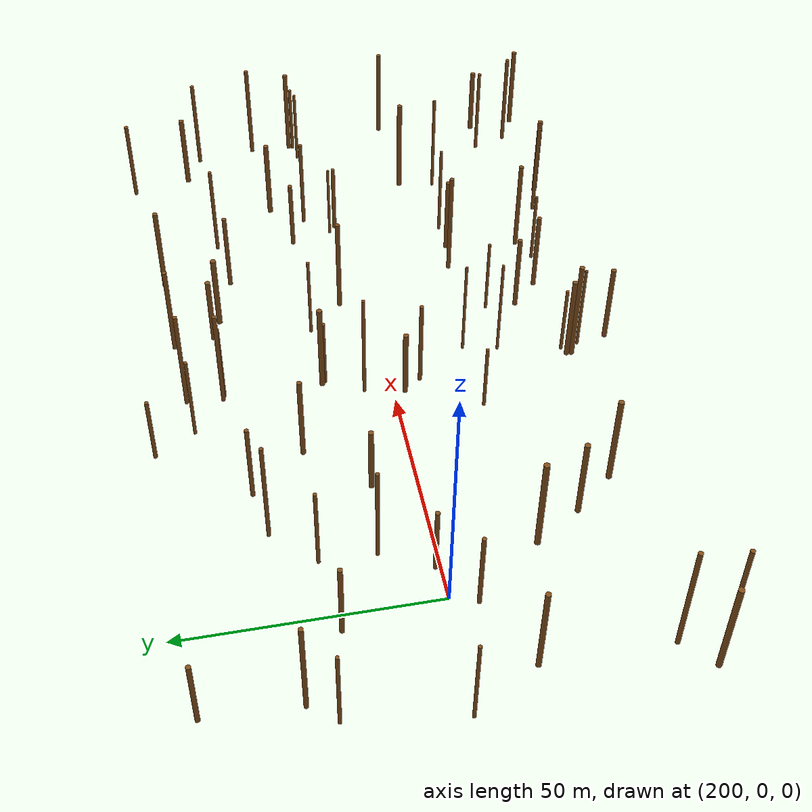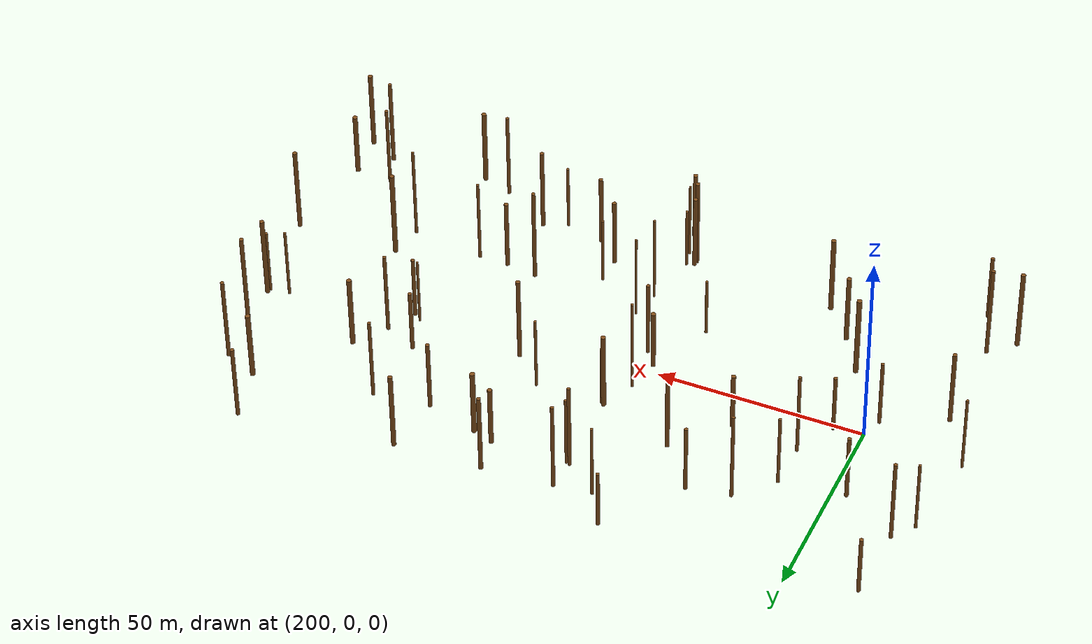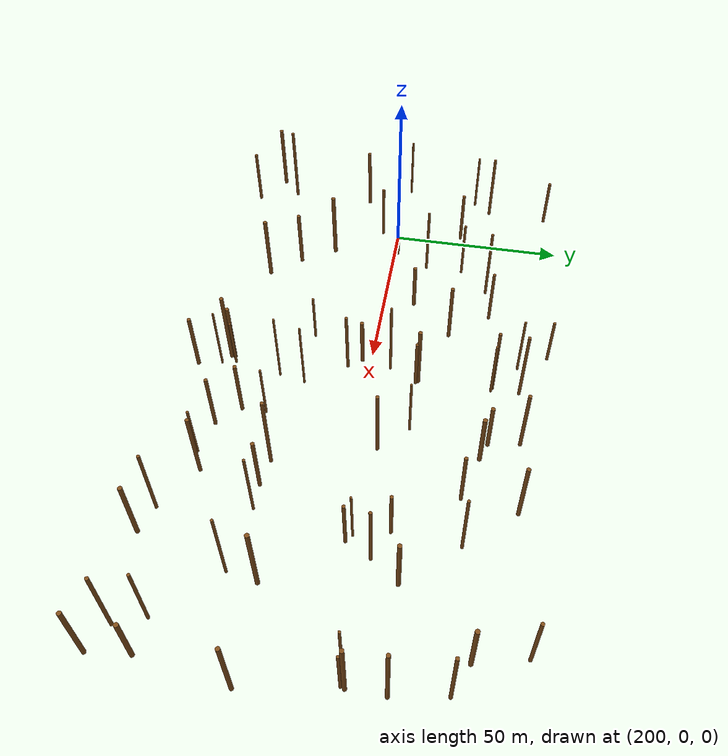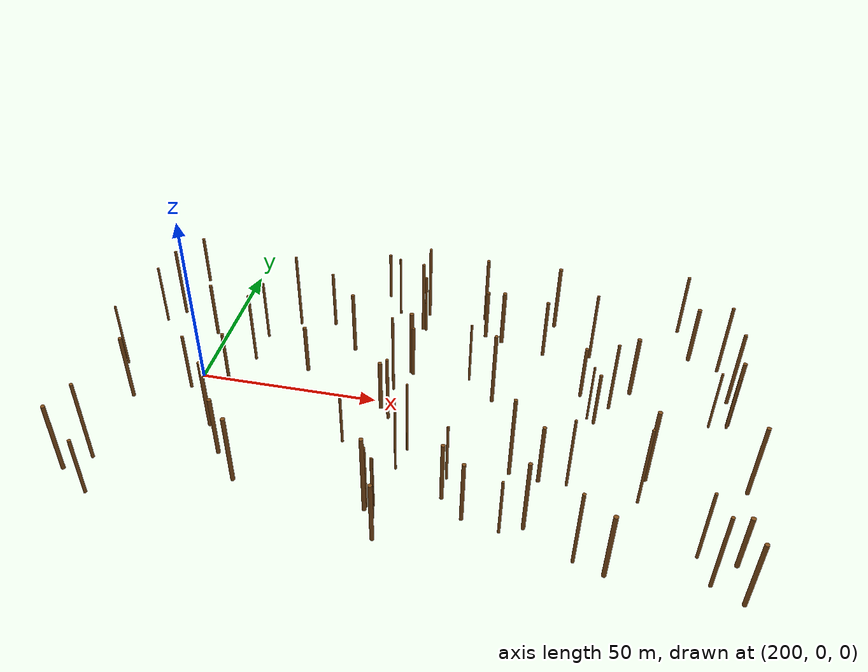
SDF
<sdf version="1.6">
 <world name="simple_forest">
  <include><uri>model://sun</uri></include>
  <model name="tree_4">
   <pose>228.23621582028974 8.92656838759087 7.5324937983903055 0 0 0</pose>
   <static>true</static>
   <link name="trunk">
    <collision name="collision">
     <geometry>
      <cylinder><radius>0.542829137003348</radius><length>15.064987596780611</length></cylinder>
     </geometry>
    </collision>
    <visual name="visual">
     <geometry>
      <cylinder><radius>0.542829137003348</radius><length>15.064987596780611</length></cylinder>
     </geometry>
     <material><ambient>0.5 0.3 0.1 1</ambient><diffuse>0.5 0.3 0.1 1</diffuse></material>
    </visual>
   </link>
  </model>
  <model name="tree_13">
   <pose>274.3080438286222 43.665458771249405 10.545655028334942 0 0 0</pose>
   <static>true</static>
   <link name="trunk">
    <collision name="collision">
     <geometry>
      <cylinder><radius>0.49441061557397803</radius><length>21.091310056669883</length></cylinder>
     </geometry>
    </collision>
    <visual name="visual">
     <geometry>
      <cylinder><radius>0.49441061557397803</radius><length>21.091310056669883</length></cylinder>
     </geometry>
     <material><ambient>0.5 0.3 0.1 1</ambient><diffuse>0.5 0.3 0.1 1</diffuse></material>
    </visual>
   </link>
  </model>
  <model name="tree_14">
   <pose>179.42726171611602 22.91267979503492 9.397277208788239 0 0 0</pose>
   <static>true</static>
   <link name="trunk">
    <collision name="collision">
     <geometry>
      <cylinder><radius>0.34902074812857853</radius><length>18.794554417576478</length></cylinder>
     </geometry>
    </collision>
    <visual name="visual">
     <geometry>
      <cylinder><radius>0.34902074812857853</radius><length>18.794554417576478</length></cylinder>
     </geometry>
     <material><ambient>0.5 0.3 0.1 1</ambient><diffuse>0.5 0.3 0.1 1</diffuse></material>
    </visual>
   </link>
  </model>
  <model name="tree_17">
   <pose>322.2985175784911 -23.225912402429728 12.214548571675273 0 0 0</pose>
   <static>true</static>
   <link name="trunk">
    <collision name="collision">
     <geometry>
      <cylinder><radius>0.3632948530758979</radius><length>24.429097143350546</length></cylinder>
     </geometry>
    </collision>
    <visual name="visual">
     <geometry>
      <cylinder><radius>0.3632948530758979</radius><length>24.429097143350546</length></cylinder>
     </geometry>
     <material><ambient>0.5 0.3 0.1 1</ambient><diffuse>0.5 0.3 0.1 1</diffuse></material>
    </visual>
   </link>
  </model>
  <model name="tree_26">
   <pose>274.15693805301737 14.0961798579808 9.673826253345524 0 0 0</pose>
   <static>true</static>
   <link name="trunk">
    <collision name="collision">
     <geometry>
      <cylinder><radius>0.33346565207876294</radius><length>19.34765250669105</length></cylinder>
     </geometry>
    </collision>
    <visual name="visual">
     <geometry>
      <cylinder><radius>0.33346565207876294</radius><length>19.34765250669105</length></cylinder>
     </geometry>
     <material><ambient>0.5 0.3 0.1 1</ambient><diffuse>0.5 0.3 0.1 1</diffuse></material>
    </visual>
   </link>
  </model>
  <model name="tree_29">
   <pose>305.46034353414655 13.894949486600517 8.264196342748175 0 0 0</pose>
   <static>true</static>
   <link name="trunk">
    <collision name="collision">
     <geometry>
      <cylinder><radius>0.4826910634314517</radius><length>16.52839268549635</length></cylinder>
     </geometry>
    </collision>
    <visual name="visual">
     <geometry>
      <cylinder><radius>0.4826910634314517</radius><length>16.52839268549635</length></cylinder>
     </geometry>
     <material><ambient>0.5 0.3 0.1 1</ambient><diffuse>0.5 0.3 0.1 1</diffuse></material>
    </visual>
   </link>
  </model>
  <model name="tree_37">
   <pose>209.13955275579895 -18.828370869910504 10.749390288197267 0 0 0</pose>
   <static>true</static>
   <link name="trunk">
    <collision name="collision">
     <geometry>
      <cylinder><radius>0.5985448069982684</radius><length>21.498780576394534</length></cylinder>
     </geometry>
    </collision>
    <visual name="visual">
     <geometry>
      <cylinder><radius>0.5985448069982684</radius><length>21.498780576394534</length></cylinder>
     </geometry>
     <material><ambient>0.5 0.3 0.1 1</ambient><diffuse>0.5 0.3 0.1 1</diffuse></material>
    </visual>
   </link>
  </model>
  <model name="tree_39">
   <pose>344.7047065259808 8.83087184572333 8.601086922257798 0 0 0</pose>
   <static>true</static>
   <link name="trunk">
    <collision name="collision">
     <geometry>
      <cylinder><radius>0.3690344197789731</radius><length>17.202173844515595</length></cylinder>
     </geometry>
    </collision>
    <visual name="visual">
     <geometry>
      <cylinder><radius>0.3690344197789731</radius><length>17.202173844515595</length></cylinder>
     </geometry>
     <material><ambient>0.5 0.3 0.1 1</ambient><diffuse>0.5 0.3 0.1 1</diffuse></material>
    </visual>
   </link>
  </model>
  <model name="tree_42">
   <pose>222.0944392967342 -36.768815127497504 10.355215466626422 0 0 0</pose>
   <static>true</static>
   <link name="trunk">
    <collision name="collision">
     <geometry>
      <cylinder><radius>0.5806542721742013</radius><length>20.710430933252844</length></cylinder>
     </geometry>
    </collision>
    <visual name="visual">
     <geometry>
      <cylinder><radius>0.5806542721742013</radius><length>20.710430933252844</length></cylinder>
     </geometry>
     <material><ambient>0.5 0.3 0.1 1</ambient><diffuse>0.5 0.3 0.1 1</diffuse></material>
    </visual>
   </link>
  </model>
  <model name="tree_47">
   <pose>198.3068193564034 -5.138645216686811 8.892725723334703 0 0 0</pose>
   <static>true</static>
   <link name="trunk">
    <collision name="collision">
     <geometry>
      <cylinder><radius>0.4265644919503212</radius><length>17.785451446669406</length></cylinder>
     </geometry>
    </collision>
    <visual name="visual">
     <geometry>
      <cylinder><radius>0.4265644919503212</radius><length>17.785451446669406</length></cylinder>
     </geometry>
     <material><ambient>0.5 0.3 0.1 1</ambient><diffuse>0.5 0.3 0.1 1</diffuse></material>
    </visual>
   </link>
  </model>
  <model name="tree_48">
   <pose>257.3083834032795 42.32655992760128 11.806745523809152 0 0 0</pose>
   <static>true</static>
   <link name="trunk">
    <collision name="collision">
     <geometry>
      <cylinder><radius>0.4329392235160371</radius><length>23.613491047618304</length></cylinder>
     </geometry>
    </collision>
    <visual name="visual">
     <geometry>
      <cylinder><radius>0.4329392235160371</radius><length>23.613491047618304</length></cylinder>
     </geometry>
     <material><ambient>0.5 0.3 0.1 1</ambient><diffuse>0.5 0.3 0.1 1</diffuse></material>
    </visual>
   </link>
  </model>
  <model name="tree_61">
   <pose>212.21660742930106 21.619180078941483 9.478929233956272 0 0 0</pose>
   <static>true</static>
   <link name="trunk">
    <collision name="collision">
     <geometry>
      <cylinder><radius>0.3716057857847538</radius><length>18.957858467912544</length></cylinder>
     </geometry>
    </collision>
    <visual name="visual">
     <geometry>
      <cylinder><radius>0.3716057857847538</radius><length>18.957858467912544</length></cylinder>
     </geometry>
     <material><ambient>0.5 0.3 0.1 1</ambient><diffuse>0.5 0.3 0.1 1</diffuse></material>
    </visual>
   </link>
  </model>
  <model name="tree_78">
   <pose>257.0344418306952 -39.72063783282144 11.920673507255046 0 0 0</pose>
   <static>true</static>
   <link name="trunk">
    <collision name="collision">
     <geometry>
      <cylinder><radius>0.5340348725614328</radius><length>23.84134701451009</length></cylinder>
     </geometry>
    </collision>
    <visual name="visual">
     <geometry>
      <cylinder><radius>0.5340348725614328</radius><length>23.84134701451009</length></cylinder>
     </geometry>
     <material><ambient>0.5 0.3 0.1 1</ambient><diffuse>0.5 0.3 0.1 1</diffuse></material>
    </visual>
   </link>
  </model>
  <model name="tree_84">
   <pose>230.20938037020778 31.65866055969289 9.025954336693003 0 0 0</pose>
   <static>true</static>
   <link name="trunk">
    <collision name="collision">
     <geometry>
      <cylinder><radius>0.4380909704036826</radius><length>18.051908673386006</length></cylinder>
     </geometry>
    </collision>
    <visual name="visual">
     <geometry>
      <cylinder><radius>0.4380909704036826</radius><length>18.051908673386006</length></cylinder>
     </geometry>
     <material><ambient>0.5 0.3 0.1 1</ambient><diffuse>0.5 0.3 0.1 1</diffuse></material>
    </visual>
   </link>
  </model>
  <model name="tree_86">
   <pose>334.97933168572945 36.43529420302863 8.895624963609357 0 0 0</pose>
   <static>true</static>
   <link name="trunk">
    <collision name="collision">
     <geometry>
      <cylinder><radius>0.5900667312145083</radius><length>17.791249927218715</length></cylinder>
     </geometry>
    </collision>
    <visual name="visual">
     <geometry>
      <cylinder><radius>0.5900667312145083</radius><length>17.791249927218715</length></cylinder>
     </geometry>
     <material><ambient>0.5 0.3 0.1 1</ambient><diffuse>0.5 0.3 0.1 1</diffuse></material>
    </visual>
   </link>
  </model>
  <model name="tree_98">
   <pose>307.94037581990966 4.793721313569819 8.934568584344635 0 0 0</pose>
   <static>true</static>
   <link name="trunk">
    <collision name="collision">
     <geometry>
      <cylinder><radius>0.30012178190918626</radius><length>17.86913716868927</length></cylinder>
     </geometry>
    </collision>
    <visual name="visual">
     <geometry>
      <cylinder><radius>0.30012178190918626</radius><length>17.86913716868927</length></cylinder>
     </geometry>
     <material><ambient>0.5 0.3 0.1 1</ambient><diffuse>0.5 0.3 0.1 1</diffuse></material>
    </visual>
   </link>
  </model>
  <model name="tree_104">
   <pose>252.39411863756666 -2.4863655781194893 7.864141145922845 0 0 0</pose>
   <static>true</static>
   <link name="trunk">
    <collision name="collision">
     <geometry>
      <cylinder><radius>0.5549213083874196</radius><length>15.72828229184569</length></cylinder>
     </geometry>
    </collision>
    <visual name="visual">
     <geometry>
      <cylinder><radius>0.5549213083874196</radius><length>15.72828229184569</length></cylinder>
     </geometry>
     <material><ambient>0.5 0.3 0.1 1</ambient><diffuse>0.5 0.3 0.1 1</diffuse></material>
    </visual>
   </link>
  </model>
  <model name="tree_108">
   <pose>184.12781488946635 45.79660422795398 7.7510919257032045 0 0 0</pose>
   <static>true</static>
   <link name="trunk">
    <collision name="collision">
     <geometry>
      <cylinder><radius>0.4553873251331222</radius><length>15.502183851406409</length></cylinder>
     </geometry>
    </collision>
    <visual name="visual">
     <geometry>
      <cylinder><radius>0.4553873251331222</radius><length>15.502183851406409</length></cylinder>
     </geometry>
     <material><ambient>0.5 0.3 0.1 1</ambient><diffuse>0.5 0.3 0.1 1</diffuse></material>
    </visual>
   </link>
  </model>
  <model name="tree_109">
   <pose>256.7062968633719 34.83363473516597 11.507083008611321 0 0 0</pose>
   <static>true</static>
   <link name="trunk">
    <collision name="collision">
     <geometry>
      <cylinder><radius>0.4369385476410518</radius><length>23.014166017222642</length></cylinder>
     </geometry>
    </collision>
    <visual name="visual">
     <geometry>
      <cylinder><radius>0.4369385476410518</radius><length>23.014166017222642</length></cylinder>
     </geometry>
     <material><ambient>0.5 0.3 0.1 1</ambient><diffuse>0.5 0.3 0.1 1</diffuse></material>
    </visual>
   </link>
  </model>
  <model name="tree_129">
   <pose>259.7488164645568 -41.80937672383575 10.197095239612668 0 0 0</pose>
   <static>true</static>
   <link name="trunk">
    <collision name="collision">
     <geometry>
      <cylinder><radius>0.3058149861150032</radius><length>20.394190479225337</length></cylinder>
     </geometry>
    </collision>
    <visual name="visual">
     <geometry>
      <cylinder><radius>0.3058149861150032</radius><length>20.394190479225337</length></cylinder>
     </geometry>
     <material><ambient>0.5 0.3 0.1 1</ambient><diffuse>0.5 0.3 0.1 1</diffuse></material>
    </visual>
   </link>
  </model>
  <model name="tree_136">
   <pose>318.83767195074824 17.734728685040878 9.483272207583136 0 0 0</pose>
   <static>true</static>
   <link name="trunk">
    <collision name="collision">
     <geometry>
      <cylinder><radius>0.5874518514617688</radius><length>18.966544415166272</length></cylinder>
     </geometry>
    </collision>
    <visual name="visual">
     <geometry>
      <cylinder><radius>0.5874518514617688</radius><length>18.966544415166272</length></cylinder>
     </geometry>
     <material><ambient>0.5 0.3 0.1 1</ambient><diffuse>0.5 0.3 0.1 1</diffuse></material>
    </visual>
   </link>
  </model>
  <model name="tree_145">
   <pose>275.71158266873306 35.17131600193318 7.933314490278372 0 0 0</pose>
   <static>true</static>
   <link name="trunk">
    <collision name="collision">
     <geometry>
      <cylinder><radius>0.549219305667181</radius><length>15.866628980556744</length></cylinder>
     </geometry>
    </collision>
    <visual name="visual">
     <geometry>
      <cylinder><radius>0.549219305667181</radius><length>15.866628980556744</length></cylinder>
     </geometry>
     <material><ambient>0.5 0.3 0.1 1</ambient><diffuse>0.5 0.3 0.1 1</diffuse></material>
    </visual>
   </link>
  </model>
  <model name="tree_148">
   <pose>219.9986516779416 29.783235682809647 11.901599898791126 0 0 0</pose>
   <static>true</static>
   <link name="trunk">
    <collision name="collision">
     <geometry>
      <cylinder><radius>0.40210165294928507</radius><length>23.803199797582252</length></cylinder>
     </geometry>
    </collision>
    <visual name="visual">
     <geometry>
      <cylinder><radius>0.40210165294928507</radius><length>23.803199797582252</length></cylinder>
     </geometry>
     <material><ambient>0.5 0.3 0.1 1</ambient><diffuse>0.5 0.3 0.1 1</diffuse></material>
    </visual>
   </link>
  </model>
  <model name="tree_155">
   <pose>258.8896394389321 -37.934411524769416 8.097773706275264 0 0 0</pose>
   <static>true</static>
   <link name="trunk">
    <collision name="collision">
     <geometry>
      <cylinder><radius>0.3577752880354552</radius><length>16.19554741255053</length></cylinder>
     </geometry>
    </collision>
    <visual name="visual">
     <geometry>
      <cylinder><radius>0.3577752880354552</radius><length>16.19554741255053</length></cylinder>
     </geometry>
     <material><ambient>0.5 0.3 0.1 1</ambient><diffuse>0.5 0.3 0.1 1</diffuse></material>
    </visual>
   </link>
  </model>
  <model name="tree_158">
   <pose>290.16871624220545 -39.94738919092092 8.637415817412773 0 0 0</pose>
   <static>true</static>
   <link name="trunk">
    <collision name="collision">
     <geometry>
      <cylinder><radius>0.35823527342732203</radius><length>17.274831634825546</length></cylinder>
     </geometry>
    </collision>
    <visual name="visual">
     <geometry>
      <cylinder><radius>0.35823527342732203</radius><length>17.274831634825546</length></cylinder>
     </geometry>
     <material><ambient>0.5 0.3 0.1 1</ambient><diffuse>0.5 0.3 0.1 1</diffuse></material>
    </visual>
   </link>
  </model>
  <model name="tree_159">
   <pose>187.64712824854928 -48.585163274393615 8.871556633916336 0 0 0</pose>
   <static>true</static>
   <link name="trunk">
    <collision name="collision">
     <geometry>
      <cylinder><radius>0.460240526780299</radius><length>17.743113267832673</length></cylinder>
     </geometry>
    </collision>
    <visual name="visual">
     <geometry>
      <cylinder><radius>0.460240526780299</radius><length>17.743113267832673</length></cylinder>
     </geometry>
     <material><ambient>0.5 0.3 0.1 1</ambient><diffuse>0.5 0.3 0.1 1</diffuse></material>
    </visual>
   </link>
  </model>
  <model name="tree_172">
   <pose>239.16147221046558 20.69558298790332 9.770156632035217 0 0 0</pose>
   <static>true</static>
   <link name="trunk">
    <collision name="collision">
     <geometry>
      <cylinder><radius>0.5108962674281151</radius><length>19.540313264070434</length></cylinder>
     </geometry>
    </collision>
    <visual name="visual">
     <geometry>
      <cylinder><radius>0.5108962674281151</radius><length>19.540313264070434</length></cylinder>
     </geometry>
     <material><ambient>0.5 0.3 0.1 1</ambient><diffuse>0.5 0.3 0.1 1</diffuse></material>
    </visual>
   </link>
  </model>
  <model name="tree_177">
   <pose>295.7244824227833 -37.564634182529176 10.998668424878586 0 0 0</pose>
   <static>true</static>
   <link name="trunk">
    <collision name="collision">
     <geometry>
      <cylinder><radius>0.5066033973636281</radius><length>21.997336849757172</length></cylinder>
     </geometry>
    </collision>
    <visual name="visual">
     <geometry>
      <cylinder><radius>0.5066033973636281</radius><length>21.997336849757172</length></cylinder>
     </geometry>
     <material><ambient>0.5 0.3 0.1 1</ambient><diffuse>0.5 0.3 0.1 1</diffuse></material>
    </visual>
   </link>
  </model>
  <model name="tree_186">
   <pose>295.3356174078412 44.519353956321055 10.250483044858914 0 0 0</pose>
   <static>true</static>
   <link name="trunk">
    <collision name="collision">
     <geometry>
      <cylinder><radius>0.5440698104213918</radius><length>20.500966089717828</length></cylinder>
     </geometry>
    </collision>
    <visual name="visual">
     <geometry>
      <cylinder><radius>0.5440698104213918</radius><length>20.500966089717828</length></cylinder>
     </geometry>
     <material><ambient>0.5 0.3 0.1 1</ambient><diffuse>0.5 0.3 0.1 1</diffuse></material>
    </visual>
   </link>
  </model>
  <model name="tree_196">
   <pose>280.69064774614145 33.47239455766943 8.71865453037569 0 0 0</pose>
   <static>true</static>
   <link name="trunk">
    <collision name="collision">
     <geometry>
      <cylinder><radius>0.5940733897810127</radius><length>17.43730906075138</length></cylinder>
     </geometry>
    </collision>
    <visual name="visual">
     <geometry>
      <cylinder><radius>0.5940733897810127</radius><length>17.43730906075138</length></cylinder>
     </geometry>
     <material><ambient>0.5 0.3 0.1 1</ambient><diffuse>0.5 0.3 0.1 1</diffuse></material>
    </visual>
   </link>
  </model>
  <model name="tree_200">
   <pose>290.0105934499984 -20.14441502282328 12.494511666146693 0 0 0</pose>
   <static>true</static>
   <link name="trunk">
    <collision name="collision">
     <geometry>
      <cylinder><radius>0.4760813167242483</radius><length>24.989023332293385</length></cylinder>
     </geometry>
    </collision>
    <visual name="visual">
     <geometry>
      <cylinder><radius>0.4760813167242483</radius><length>24.989023332293385</length></cylinder>
     </geometry>
     <material><ambient>0.5 0.3 0.1 1</ambient><diffuse>0.5 0.3 0.1 1</diffuse></material>
    </visual>
   </link>
  </model>
  <model name="tree_203">
   <pose>196.76584997003437 19.749842762057142 8.667812230289465 0 0 0</pose>
   <static>true</static>
   <link name="trunk">
    <collision name="collision">
     <geometry>
      <cylinder><radius>0.47153929259547034</radius><length>17.33562446057893</length></cylinder>
     </geometry>
    </collision>
    <visual name="visual">
     <geometry>
      <cylinder><radius>0.47153929259547034</radius><length>17.33562446057893</length></cylinder>
     </geometry>
     <material><ambient>0.5 0.3 0.1 1</ambient><diffuse>0.5 0.3 0.1 1</diffuse></material>
    </visual>
   </link>
  </model>
  <model name="tree_210">
   <pose>345.17562171091737 19.2704598586882 11.758826461753458 0 0 0</pose>
   <static>true</static>
   <link name="trunk">
    <collision name="collision">
     <geometry>
      <cylinder><radius>0.49495099577378177</radius><length>23.517652923506915</length></cylinder>
     </geometry>
    </collision>
    <visual name="visual">
     <geometry>
      <cylinder><radius>0.49495099577378177</radius><length>23.517652923506915</length></cylinder>
     </geometry>
     <material><ambient>0.5 0.3 0.1 1</ambient><diffuse>0.5 0.3 0.1 1</diffuse></material>
    </visual>
   </link>
  </model>
  <model name="tree_218">
   <pose>178.2838125774164 -42.10316493400054 10.598551842687076 0 0 0</pose>
   <static>true</static>
   <link name="trunk">
    <collision name="collision">
     <geometry>
      <cylinder><radius>0.5612518795934565</radius><length>21.197103685374152</length></cylinder>
     </geometry>
    </collision>
    <visual name="visual">
     <geometry>
      <cylinder><radius>0.5612518795934565</radius><length>21.197103685374152</length></cylinder>
     </geometry>
     <material><ambient>0.5 0.3 0.1 1</ambient><diffuse>0.5 0.3 0.1 1</diffuse></material>
    </visual>
   </link>
  </model>
  <model name="tree_219">
   <pose>248.42149393774991 41.28290160235548 9.805749566774988 0 0 0</pose>
   <static>true</static>
   <link name="trunk">
    <collision name="collision">
     <geometry>
      <cylinder><radius>0.3429353160385529</radius><length>19.611499133549977</length></cylinder>
     </geometry>
    </collision>
    <visual name="visual">
     <geometry>
      <cylinder><radius>0.3429353160385529</radius><length>19.611499133549977</length></cylinder>
     </geometry>
     <material><ambient>0.5 0.3 0.1 1</ambient><diffuse>0.5 0.3 0.1 1</diffuse></material>
    </visual>
   </link>
  </model>
  <model name="tree_220">
   <pose>261.43756601940686 -24.467329184084598 11.523165384875732 0 0 0</pose>
   <static>true</static>
   <link name="trunk">
    <collision name="collision">
     <geometry>
      <cylinder><radius>0.3028192294364613</radius><length>23.046330769751464</length></cylinder>
     </geometry>
    </collision>
    <visual name="visual">
     <geometry>
      <cylinder><radius>0.3028192294364613</radius><length>23.046330769751464</length></cylinder>
     </geometry>
     <material><ambient>0.5 0.3 0.1 1</ambient><diffuse>0.5 0.3 0.1 1</diffuse></material>
    </visual>
   </link>
  </model>
  <model name="tree_223">
   <pose>257.59724216362423 34.53039251425987 9.423466244836728 0 0 0</pose>
   <static>true</static>
   <link name="trunk">
    <collision name="collision">
     <geometry>
      <cylinder><radius>0.3597650997326677</radius><length>18.846932489673456</length></cylinder>
     </geometry>
    </collision>
    <visual name="visual">
     <geometry>
      <cylinder><radius>0.3597650997326677</radius><length>18.846932489673456</length></cylinder>
     </geometry>
     <material><ambient>0.5 0.3 0.1 1</ambient><diffuse>0.5 0.3 0.1 1</diffuse></material>
    </visual>
   </link>
  </model>
  <model name="tree_226">
   <pose>281.73557637644547 6.5929016955699 11.223344205826626 0 0 0</pose>
   <static>true</static>
   <link name="trunk">
    <collision name="collision">
     <geometry>
      <cylinder><radius>0.5057398478202036</radius><length>22.446688411653252</length></cylinder>
     </geometry>
    </collision>
    <visual name="visual">
     <geometry>
      <cylinder><radius>0.5057398478202036</radius><length>22.446688411653252</length></cylinder>
     </geometry>
     <material><ambient>0.5 0.3 0.1 1</ambient><diffuse>0.5 0.3 0.1 1</diffuse></material>
    </visual>
   </link>
  </model>
  <model name="tree_228">
   <pose>293.33220994460254 29.886011950759865 9.261604779176583 0 0 0</pose>
   <static>true</static>
   <link name="trunk">
    <collision name="collision">
     <geometry>
      <cylinder><radius>0.4821194994492798</radius><length>18.523209558353166</length></cylinder>
     </geometry>
    </collision>
    <visual name="visual">
     <geometry>
      <cylinder><radius>0.4821194994492798</radius><length>18.523209558353166</length></cylinder>
     </geometry>
     <material><ambient>0.5 0.3 0.1 1</ambient><diffuse>0.5 0.3 0.1 1</diffuse></material>
    </visual>
   </link>
  </model>
  <model name="tree_233">
   <pose>183.88366973986356 -36.78402022532165 12.357447906056699 0 0 0</pose>
   <static>true</static>
   <link name="trunk">
    <collision name="collision">
     <geometry>
      <cylinder><radius>0.4618223276953263</radius><length>24.714895812113397</length></cylinder>
     </geometry>
    </collision>
    <visual name="visual">
     <geometry>
      <cylinder><radius>0.4618223276953263</radius><length>24.714895812113397</length></cylinder>
     </geometry>
     <material><ambient>0.5 0.3 0.1 1</ambient><diffuse>0.5 0.3 0.1 1</diffuse></material>
    </visual>
   </link>
  </model>
  <model name="tree_236">
   <pose>345.32810126386744 -38.48302925502406 8.203785075029414 0 0 0</pose>
   <static>true</static>
   <link name="trunk">
    <collision name="collision">
     <geometry>
      <cylinder><radius>0.5888679878606633</radius><length>16.407570150058827</length></cylinder>
     </geometry>
    </collision>
    <visual name="visual">
     <geometry>
      <cylinder><radius>0.5888679878606633</radius><length>16.407570150058827</length></cylinder>
     </geometry>
     <material><ambient>0.5 0.3 0.1 1</ambient><diffuse>0.5 0.3 0.1 1</diffuse></material>
    </visual>
   </link>
  </model>
  <model name="tree_255">
   <pose>215.0857966431919 -28.404864808132523 9.142797767161152 0 0 0</pose>
   <static>true</static>
   <link name="trunk">
    <collision name="collision">
     <geometry>
      <cylinder><radius>0.5609086280308634</radius><length>18.285595534322304</length></cylinder>
     </geometry>
    </collision>
    <visual name="visual">
     <geometry>
      <cylinder><radius>0.5609086280308634</radius><length>18.285595534322304</length></cylinder>
     </geometry>
     <material><ambient>0.5 0.3 0.1 1</ambient><diffuse>0.5 0.3 0.1 1</diffuse></material>
    </visual>
   </link>
  </model>
  <model name="tree_259">
   <pose>245.5522900295584 -17.622853803797753 7.7619950893058824 0 0 0</pose>
   <static>true</static>
   <link name="trunk">
    <collision name="collision">
     <geometry>
      <cylinder><radius>0.35227386042185316</radius><length>15.523990178611765</length></cylinder>
     </geometry>
    </collision>
    <visual name="visual">
     <geometry>
      <cylinder><radius>0.35227386042185316</radius><length>15.523990178611765</length></cylinder>
     </geometry>
     <material><ambient>0.5 0.3 0.1 1</ambient><diffuse>0.5 0.3 0.1 1</diffuse></material>
    </visual>
   </link>
  </model>
  <model name="tree_267">
   <pose>331.93358888548124 49.46277558609236 9.768577087877357 0 0 0</pose>
   <static>true</static>
   <link name="trunk">
    <collision name="collision">
     <geometry>
      <cylinder><radius>0.4591670512293974</radius><length>19.537154175754715</length></cylinder>
     </geometry>
    </collision>
    <visual name="visual">
     <geometry>
      <cylinder><radius>0.4591670512293974</radius><length>19.537154175754715</length></cylinder>
     </geometry>
     <material><ambient>0.5 0.3 0.1 1</ambient><diffuse>0.5 0.3 0.1 1</diffuse></material>
    </visual>
   </link>
  </model>
  <model name="tree_275">
   <pose>336.349521602043 -37.77687146454407 10.826702600014578 0 0 0</pose>
   <static>true</static>
   <link name="trunk">
    <collision name="collision">
     <geometry>
      <cylinder><radius>0.4060794238901303</radius><length>21.653405200029155</length></cylinder>
     </geometry>
    </collision>
    <visual name="visual">
     <geometry>
      <cylinder><radius>0.4060794238901303</radius><length>21.653405200029155</length></cylinder>
     </geometry>
     <material><ambient>0.5 0.3 0.1 1</ambient><diffuse>0.5 0.3 0.1 1</diffuse></material>
    </visual>
   </link>
  </model>
  <model name="tree_282">
   <pose>274.77324790256955 -31.95839280391456 9.04492344414955 0 0 0</pose>
   <static>true</static>
   <link name="trunk">
    <collision name="collision">
     <geometry><cylinder><radius>0.5108096318596814</radius><length>18.0898468882991</length></cylinder></geometry>
    </collision>
    <visual name="visual">
     <geometry><cylinder><radius>0.5108096318596814</radius><length>18.0898468882991</length></cylinder></geometry>
     <material><ambient>0.5 0.3 0.1 1</ambient><diffuse>0.5 0.3 0.1 1</diffuse></material>
    </visual>
   </link>
  </model>
  <model name="tree_283">
   <pose>346.42641020948577 -49.38942105963413 10.331605473806881 0 0 0</pose>
   <static>true</static>
   <link name="trunk">
    <collision name="collision">
     <geometry>
      <cylinder><radius>0.5609588119609314</radius><length>20.663210947613763</length></cylinder>
     </geometry>
    </collision>
    <visual name="visual">
     <geometry>
      <cylinder><radius>0.5609588119609314</radius><length>20.663210947613763</length></cylinder>
     </geometry>
     <material><ambient>0.5 0.3 0.1 1</ambient><diffuse>0.5 0.3 0.1 1</diffuse></material>
    </visual>
   </link>
  </model>
  <model name="tree_293">
   <pose>262.9643089812447 -17.18776440621589 11.235070617148839 0 0 0</pose>
   <static>true</static>
   <link name="trunk">
    <collision name="collision">
     <geometry>
      <cylinder><radius>0.30231897197079355</radius><length>22.470141234297678</length></cylinder>
     </geometry>
    </collision>
    <visual name="visual">
     <geometry>
      <cylinder><radius>0.30231897197079355</radius><length>22.470141234297678</length></cylinder>
     </geometry>
     <material><ambient>0.5 0.3 0.1 1</ambient><diffuse>0.5 0.3 0.1 1</diffuse></material>
    </visual>
   </link>
  </model>
  <model name="tree_294">
   <pose>183.93785385708387 -11.979255428476378 10.001311732781065 0 0 0</pose>
   <static>true</static>
   <link name="trunk">
    <collision name="collision">
     <geometry>
      <cylinder><radius>0.5111013790147991</radius><length>20.00262346556213</length></cylinder>
     </geometry>
    </collision>
    <visual name="visual">
     <geometry>
      <cylinder><radius>0.5111013790147991</radius><length>20.00262346556213</length></cylinder>
     </geometry>
     <material><ambient>0.5 0.3 0.1 1</ambient><diffuse>0.5 0.3 0.1 1</diffuse></material>
    </visual>
   </link>
  </model>
  <model name="tree_302">
   <pose>176.45138096522973 1.0483284542148326 10.04976031161486 0 0 0</pose>
   <static>true</static>
   <link name="trunk">
    <collision name="collision">
     <geometry>
      <cylinder><radius>0.33420799195156575</radius><length>20.09952062322972</length></cylinder>
     </geometry>
    </collision>
    <visual name="visual">
     <geometry>
      <cylinder><radius>0.33420799195156575</radius><length>20.09952062322972</length></cylinder>
     </geometry>
     <material><ambient>0.5 0.3 0.1 1</ambient><diffuse>0.5 0.3 0.1 1</diffuse></material>
    </visual>
   </link>
  </model>
  <model name="tree_317">
   <pose>255.26628636230137 -6.2241725690767 10.113740176327727 0 0 0</pose>
   <static>true</static>
   <link name="trunk">
    <collision name="collision">
     <geometry>
      <cylinder><radius>0.4318265375287873</radius><length>20.227480352655455</length></cylinder>
     </geometry>
    </collision>
    <visual name="visual">
     <geometry>
      <cylinder><radius>0.4318265375287873</radius><length>20.227480352655455</length></cylinder>
     </geometry>
     <material><ambient>0.5 0.3 0.1 1</ambient><diffuse>0.5 0.3 0.1 1</diffuse></material>
    </visual>
   </link>
  </model>
  <model name="tree_319">
   <pose>344.9834753730054 9.788586238298947 10.736526784846534 0 0 0</pose>
   <static>true</static>
   <link name="trunk">
    <collision name="collision">
     <geometry>
      <cylinder><radius>0.5367680794690994</radius><length>21.473053569693068</length></cylinder>
     </geometry>
    </collision>
    <visual name="visual">
     <geometry>
      <cylinder><radius>0.5367680794690994</radius><length>21.473053569693068</length></cylinder>
     </geometry>
     <material><ambient>0.5 0.3 0.1 1</ambient><diffuse>0.5 0.3 0.1 1</diffuse></material>
    </visual>
   </link>
  </model>
  <model name="tree_322">
   <pose>340.02841569995104 8.27395145864196 9.249103937679221 0 0 0</pose>
   <static>true</static>
   <link name="trunk">
    <collision name="collision">
     <geometry>
      <cylinder><radius>0.34242851417529535</radius><length>18.498207875358442</length></cylinder>
     </geometry>
    </collision>
    <visual name="visual">
     <geometry>
      <cylinder><radius>0.34242851417529535</radius><length>18.498207875358442</length></cylinder>
     </geometry>
     <material><ambient>0.5 0.3 0.1 1</ambient><diffuse>0.5 0.3 0.1 1</diffuse></material>
    </visual>
   </link>
  </model>
  <model name="tree_339">
   <pose>257.50317947311703 14.117903620444721 10.272703727122156 0 0 0</pose>
   <static>true</static>
   <link name="trunk">
    <collision name="collision">
     <geometry>
      <cylinder><radius>0.5622350835156711</radius><length>20.545407454244312</length></cylinder>
     </geometry>
    </collision>
    <visual name="visual">
     <geometry>
      <cylinder><radius>0.5622350835156711</radius><length>20.545407454244312</length></cylinder>
     </geometry>
     <material><ambient>0.5 0.3 0.1 1</ambient><diffuse>0.5 0.3 0.1 1</diffuse></material>
    </visual>
   </link>
  </model>
  <model name="tree_344">
   <pose>243.42029312479832 49.45253512382912 7.64093772764075 0 0 0</pose>
   <static>true</static>
   <link name="trunk">
    <collision name="collision">
     <geometry>
      <cylinder><radius>0.41247380202533024</radius><length>15.2818754552815</length></cylinder>
     </geometry>
    </collision>
    <visual name="visual">
     <geometry>
      <cylinder><radius>0.41247380202533024</radius><length>15.2818754552815</length></cylinder>
     </geometry>
     <material><ambient>0.5 0.3 0.1 1</ambient><diffuse>0.5 0.3 0.1 1</diffuse></material>
    </visual>
   </link>
  </model>
  <model name="tree_350">
   <pose>308.13968264035776 -45.22505533811487 11.46949554319719 0 0 0</pose>
   <static>true</static>
   <link name="trunk">
    <collision name="collision">
     <geometry>
      <cylinder><radius>0.42594766312603294</radius><length>22.93899108639438</length></cylinder>
     </geometry>
    </collision>
    <visual name="visual">
     <geometry>
      <cylinder><radius>0.42594766312603294</radius><length>22.93899108639438</length></cylinder>
     </geometry>
     <material><ambient>0.5 0.3 0.1 1</ambient><diffuse>0.5 0.3 0.1 1</diffuse></material>
    </visual>
   </link>
  </model>
  <model name="tree_357">
   <pose>261.1137584585206 -48.37577688910524 9.224012465816957 0 0 0</pose>
   <static>true</static>
   <link name="trunk">
    <collision name="collision">
     <geometry>
      <cylinder><radius>0.5365560048838546</radius><length>18.448024931633913</length></cylinder>
     </geometry>
    </collision>
    <visual name="visual">
     <geometry>
      <cylinder><radius>0.5365560048838546</radius><length>18.448024931633913</length></cylinder>
     </geometry>
     <material><ambient>0.5 0.3 0.1 1</ambient><diffuse>0.5 0.3 0.1 1</diffuse></material>
    </visual>
   </link>
  </model>
  <model name="tree_359">
   <pose>339.193422288265 -45.566431170479184 11.56754432778044 0 0 0</pose>
   <static>true</static>
   <link name="trunk">
    <collision name="collision">
     <geometry>
      <cylinder><radius>0.46380412356230744</radius><length>23.13508865556088</length></cylinder>
     </geometry>
    </collision>
    <visual name="visual">
     <geometry>
      <cylinder><radius>0.46380412356230744</radius><length>23.13508865556088</length></cylinder>
     </geometry>
     <material><ambient>0.5 0.3 0.1 1</ambient><diffuse>0.5 0.3 0.1 1</diffuse></material>
    </visual>
   </link>
  </model>
  <model name="tree_360">
   <pose>183.33823578119134 27.91425934782815 10.97694625998032 0 0 0</pose>
   <static>true</static>
   <link name="trunk">
    <collision name="collision">
     <geometry>
      <cylinder><radius>0.4393868699241113</radius><length>21.95389251996064</length></cylinder>
     </geometry>
    </collision>
    <visual name="visual">
     <geometry>
      <cylinder><radius>0.4393868699241113</radius><length>21.95389251996064</length></cylinder>
     </geometry>
     <material><ambient>0.5 0.3 0.1 1</ambient><diffuse>0.5 0.3 0.1 1</diffuse></material>
    </visual>
   </link>
  </model>
  <model name="tree_371">
   <pose>313.43089752984497 10.262162773059977 10.948824042227432 0 0 0</pose>
   <static>true</static>
   <link name="trunk">
    <collision name="collision">
     <geometry>
      <cylinder><radius>0.4278348218649136</radius><length>21.897648084454865</length></cylinder>
     </geometry>
    </collision>
    <visual name="visual">
     <geometry>
      <cylinder><radius>0.4278348218649136</radius><length>21.897648084454865</length></cylinder>
     </geometry>
     <material><ambient>0.5 0.3 0.1 1</ambient><diffuse>0.5 0.3 0.1 1</diffuse></material>
    </visual>
   </link>
  </model>
  <model name="tree_380">
   <pose>257.11553656246394 -38.65513874149819 9.995219801282333 0 0 0</pose>
   <static>true</static>
   <link name="trunk">
    <collision name="collision">
     <geometry>
      <cylinder><radius>0.5207024578438283</radius><length>19.990439602564667</length></cylinder>
     </geometry>
    </collision>
    <visual name="visual">
     <geometry>
      <cylinder><radius>0.5207024578438283</radius><length>19.990439602564667</length></cylinder>
     </geometry>
     <material><ambient>0.5 0.3 0.1 1</ambient><diffuse>0.5 0.3 0.1 1</diffuse></material>
    </visual>
   </link>
  </model>
  <model name="tree_398">
   <pose>258.0992558921791 13.505709138774591 8.125851475634514 0 0 0</pose>
   <static>true</static>
   <link name="trunk">
    <collision name="collision">
     <geometry>
      <cylinder><radius>0.4652524246449419</radius><length>16.251702951269028</length></cylinder>
     </geometry>
    </collision>
    <visual name="visual">
     <geometry>
      <cylinder><radius>0.4652524246449419</radius><length>16.251702951269028</length></cylinder>
     </geometry>
     <material><ambient>0.5 0.3 0.1 1</ambient><diffuse>0.5 0.3 0.1 1</diffuse></material>
    </visual>
   </link>
  </model>
  <model name="tree_399">
   <pose>309.7963600477873 3.3478029768380537 8.343179508738533 0 0 0</pose>
   <static>true</static>
   <link name="trunk">
    <collision name="collision">
     <geometry>
      <cylinder><radius>0.4507719434223788</radius><length>16.686359017477066</length></cylinder>
     </geometry>
    </collision>
    <visual name="visual">
     <geometry>
      <cylinder><radius>0.4507719434223788</radius><length>16.686359017477066</length></cylinder>
     </geometry>
     <material><ambient>0.5 0.3 0.1 1</ambient><diffuse>0.5 0.3 0.1 1</diffuse></material>
    </visual>
   </link>
  </model>
  <model name="tree_407">
   <pose>211.9827834277647 10.666026282063633 11.091814425562188 0 0 0</pose>
   <static>true</static>
   <link name="trunk">
    <collision name="collision">
     <geometry>
      <cylinder><radius>0.3937747497740799</radius><length>22.183628851124375</length></cylinder>
     </geometry>
    </collision>
    <visual name="visual">
     <geometry>
      <cylinder><radius>0.3937747497740799</radius><length>22.183628851124375</length></cylinder>
     </geometry>
     <material><ambient>0.5 0.3 0.1 1</ambient><diffuse>0.5 0.3 0.1 1</diffuse></material>
    </visual>
   </link>
  </model>
  <model name="tree_410">
   <pose>274.7969577096406 -25.20811174744544 8.951060024849507 0 0 0</pose>
   <static>true</static>
   <link name="trunk">
    <collision name="collision">
     <geometry>
      <cylinder><radius>0.32904349576817143</radius><length>17.902120049699015</length></cylinder>
     </geometry>
    </collision>
    <visual name="visual">
     <geometry>
      <cylinder><radius>0.32904349576817143</radius><length>17.902120049699015</length></cylinder>
     </geometry>
     <material><ambient>0.5 0.3 0.1 1</ambient><diffuse>0.5 0.3 0.1 1</diffuse></material>
    </visual>
   </link>
  </model>
  <model name="tree_414">
   <pose>315.455077233885 -47.6823701783649 10.027222315118857 0 0 0</pose>
   <static>true</static>
   <link name="trunk">
    <collision name="collision">
     <geometry>
      <cylinder><radius>0.5835698412207712</radius><length>20.054444630237715</length></cylinder>
     </geometry>
    </collision>
    <visual name="visual">
     <geometry>
      <cylinder><radius>0.5835698412207712</radius><length>20.054444630237715</length></cylinder>
     </geometry>
     <material><ambient>0.5 0.3 0.1 1</ambient><diffuse>0.5 0.3 0.1 1</diffuse></material>
    </visual>
   </link>
  </model>
  <model name="tree_423">
   <pose>207.06730273692546 0.9122516225182125 7.726516762335374 0 0 0</pose>
   <static>true</static>
   <link name="trunk">
    <collision name="collision">
     <geometry>
      <cylinder><radius>0.45002337107119317</radius><length>15.453033524670747</length></cylinder>
     </geometry>
    </collision>
    <visual name="visual">
     <geometry>
      <cylinder><radius>0.45002337107119317</radius><length>15.453033524670747</length></cylinder>
     </geometry>
     <material><ambient>0.5 0.3 0.1 1</ambient><diffuse>0.5 0.3 0.1 1</diffuse></material>
    </visual>
   </link>
  </model>
  <model name="tree_427">
   <pose>343.00971763016156 32.82893859573758 11.043699032177189 0 0 0</pose>
   <static>true</static>
   <link name="trunk">
    <collision name="collision">
     <geometry>
      <cylinder><radius>0.4597019489627629</radius><length>22.087398064354378</length></cylinder>
     </geometry>
    </collision>
    <visual name="visual">
     <geometry>
      <cylinder><radius>0.4597019489627629</radius><length>22.087398064354378</length></cylinder>
     </geometry>
     <material><ambient>0.5 0.3 0.1 1</ambient><diffuse>0.5 0.3 0.1 1</diffuse></material>
    </visual>
   </link>
  </model>
  <model name="tree_428">
   <pose>306.7926590900396 31.574883324382412 10.869031962365083 0 0 0</pose>
   <static>true</static>
   <link name="trunk">
    <collision name="collision">
     <geometry>
      <cylinder><radius>0.41050734295973085</radius><length>21.738063924730167</length></cylinder>
     </geometry>
    </collision>
    <visual name="visual">
     <geometry>
      <cylinder><radius>0.41050734295973085</radius><length>21.738063924730167</length></cylinder>
     </geometry>
     <material><ambient>0.5 0.3 0.1 1</ambient><diffuse>0.5 0.3 0.1 1</diffuse></material>
    </visual>
   </link>
  </model>
  <model name="tree_439">
   <pose>348.9037475050277 -14.571301135518723 11.104622806636463 0 0 0</pose>
   <static>true</static>
   <link name="trunk">
    <collision name="collision">
     <geometry>
      <cylinder><radius>0.5315969352446221</radius><length>22.209245613272927</length></cylinder>
     </geometry>
    </collision>
    <visual name="visual">
     <geometry>
      <cylinder><radius>0.5315969352446221</radius><length>22.209245613272927</length></cylinder>
     </geometry>
     <material><ambient>0.5 0.3 0.1 1</ambient><diffuse>0.5 0.3 0.1 1</diffuse></material>
    </visual>
   </link>
  </model>
  <model name="tree_441">
   <pose>254.05394417208677 5.808665080740418 12.364553137952845 0 0 0</pose>
   <static>true</static>
   <link name="trunk">
    <collision name="collision">
     <geometry><cylinder><radius>0.367460111397845</radius><length>24.72910627590569</length></cylinder></geometry>
    </collision>
    <visual name="visual">
     <geometry><cylinder><radius>0.367460111397845</radius><length>24.72910627590569</length></cylinder></geometry>
     <material><ambient>0.5 0.3 0.1 1</ambient><diffuse>0.5 0.3 0.1 1</diffuse></material>
    </visual>
   </link>
  </model>
  <model name="tree_442">
   <pose>304.6384196241388 -21.099586259647506 11.024941298700984 0 0 0</pose>
   <static>true</static>
   <link name="trunk">
    <collision name="collision">
     <geometry>
      <cylinder><radius>0.36218333845639206</radius><length>22.049882597401968</length></cylinder>
     </geometry>
    </collision>
    <visual name="visual">
     <geometry>
      <cylinder><radius>0.36218333845639206</radius><length>22.049882597401968</length></cylinder>
     </geometry>
     <material><ambient>0.5 0.3 0.1 1</ambient><diffuse>0.5 0.3 0.1 1</diffuse></material>
    </visual>
   </link>
  </model>
  <model name="tree_443">
   <pose>323.87033756826355 -15.119682579869341 11.477026780011668 0 0 0</pose>
   <static>true</static>
   <link name="trunk">
    <collision name="collision">
     <geometry>
      <cylinder><radius>0.5801101124312402</radius><length>22.954053560023336</length></cylinder>
     </geometry>
    </collision>
    <visual name="visual">
     <geometry>
      <cylinder><radius>0.5801101124312402</radius><length>22.954053560023336</length></cylinder>
     </geometry>
     <material><ambient>0.5 0.3 0.1 1</ambient><diffuse>0.5 0.3 0.1 1</diffuse></material>
    </visual>
   </link>
  </model>
  <model name="tree_444">
   <pose>280.72296138786885 -37.81258942672849 9.398470926871912 0 0 0</pose>
   <static>true</static>
   <link name="trunk">
    <collision name="collision">
     <geometry>
      <cylinder><radius>0.5029866737347637</radius><length>18.796941853743824</length></cylinder>
     </geometry>
    </collision>
    <visual name="visual">
     <geometry>
      <cylinder><radius>0.5029866737347637</radius><length>18.796941853743824</length></cylinder>
     </geometry>
     <material><ambient>0.5 0.3 0.1 1</ambient><diffuse>0.5 0.3 0.1 1</diffuse></material>
    </visual>
   </link>
  </model>
  <model name="tree_446">
   <pose>297.5481254730062 -21.23696583858601 9.231817570478082 0 0 0</pose>
   <static>true</static>
   <link name="trunk">
    <collision name="collision">
     <geometry>
      <cylinder><radius>0.5142423862495186</radius><length>18.463635140956164</length></cylinder>
     </geometry>
    </collision>
    <visual name="visual">
     <geometry>
      <cylinder><radius>0.5142423862495186</radius><length>18.463635140956164</length></cylinder>
     </geometry>
     <material><ambient>0.5 0.3 0.1 1</ambient><diffuse>0.5 0.3 0.1 1</diffuse></material>
    </visual>
   </link>
  </model>
 </world>
</sdf>
